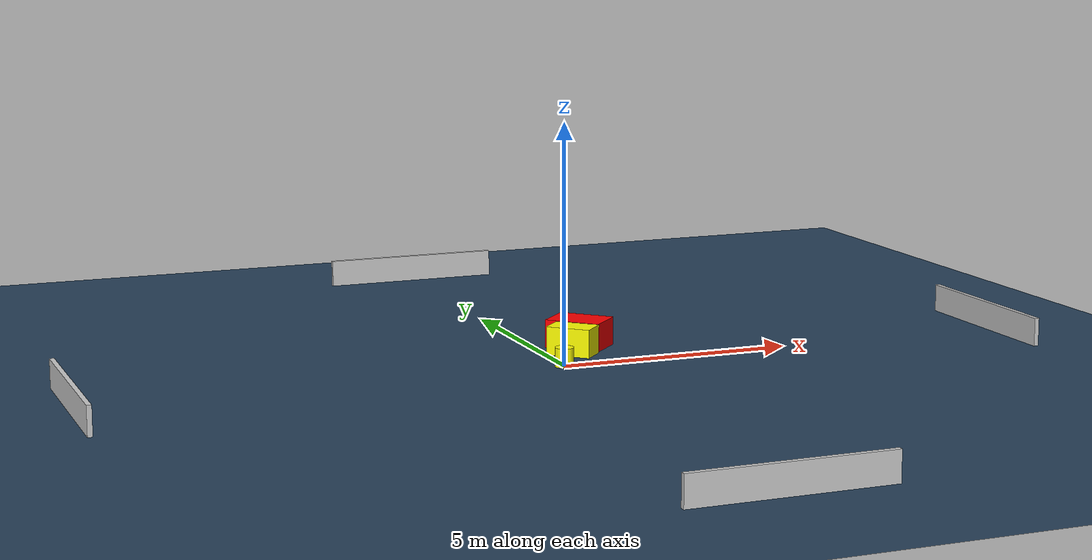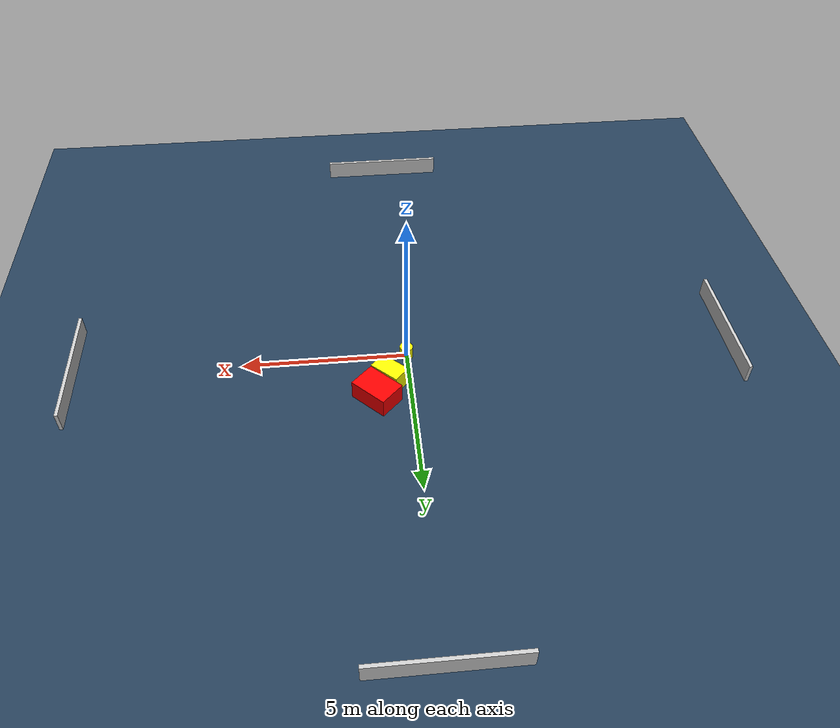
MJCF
<?xml version="1.0" ?>
<mujoco model="generated_environment">
  <option timestep="0.01" integrator="RK4" cone="elliptic"/>
  <default>
    <geom density="1"/>
  </default>
  <asset>
    <texture builtin="gradient" height="3072" name="skybox" rgb1="0.3 0.5 0.7" rgb2="0 0 0" type="skybox" width="512"/>
    <texture builtin="checker" height="300" name="groundplane" rgb1="0.2 0.3 0.4" rgb2="0.1 0.2 0.3" type="2d" width="300"/>
    <material name="groundplane" reflectance="0.2" texrepeat="5 5" texture="groundplane"/>
  </asset>
  <worldbody>
    <light dir="0 0 -1" directional="true" pos="0 0 1.5"/>
    <geom condim="3" friction="0.5 0.005 0.001" material="groundplane" name="floor" pos="0 0 0" size="0 0 0.05" type="plane"/>
    <body name="walls">
      <geom name="wall_1" condim="4" pos="-10.0 0.0 0.3" rgba="0.800000011920929 0.800000011920929 0.800000011920929 1.0" size="0.05 2.0 0.3" type="box"/>
      <geom name="wall_2" condim="4" pos="10.0 0.0 0.3" rgba="0.800000011920929 0.800000011920929 0.800000011920929 1.0" size="0.05 2.0 0.3" type="box"/>
      <geom name="wall_3" condim="4" pos="0.0 -10.0 0.3" rgba="0.800000011920929 0.800000011920929 0.800000011920929 1.0" size="2.0 0.05 0.3" type="box"/>
      <geom name="wall_4" condim="4" pos="0.0 10.0 0.3" rgba="0.800000011920929 0.800000011920929 0.800000011920929 1.0" size="2.0 0.05 0.3" type="box"/>
    </body>
    <body name="robot">
      <joint name="joint_x" type="slide" pos="0 0 0" axis="1 0 0"/>
      <joint name="joint_y" type="slide" pos="0 0 0" axis="0 1 0"/>
      <geom name="robot" type="cylinder" pos="0.0 0.0 0.2" size="0.2 0.2 0.0" mass="5.0" friction="1.0 0.005 0.0001" condim="4" rgba="1.0 1.0 0.0 1.0"/>
    </body>
    <body name="obstacle_1_movable">
      <geom name="obstacle_1_movable" condim="4" pos="0.5860775093452572 0.9921334065667694 0.3" euler="0 0 316.58090876799184" friction="0.0 0.005 0.001" rgba="1.0 1.0 0.0 1.0" size="0.4780640890702289 0.2905847866136306 0.3" type="box" mass="0.1"/>
      <joint type="free"/>
    </body>
    <body name="obstacle_2_static">
      <geom name="obstacle_2_static" condim="4" pos="1.005958396337113 1.6429136057581841 0.3" euler="0 0 44.94634378424432" friction="0.0 0.005 0.001" rgba="1.0 0.0 0.0 1.0" size="0.42484545426335324 0.6039050288117214 0.3" type="box"/>
    </body>
  </worldbody>
  <actuator>
    <motor name="actuator_x" joint="joint_x" gear="1" ctrlrange="-1 1"/>
    <motor name="actuator_y" joint="joint_y" gear="1" ctrlrange="-1 1"/>
  </actuator>
</mujoco>
